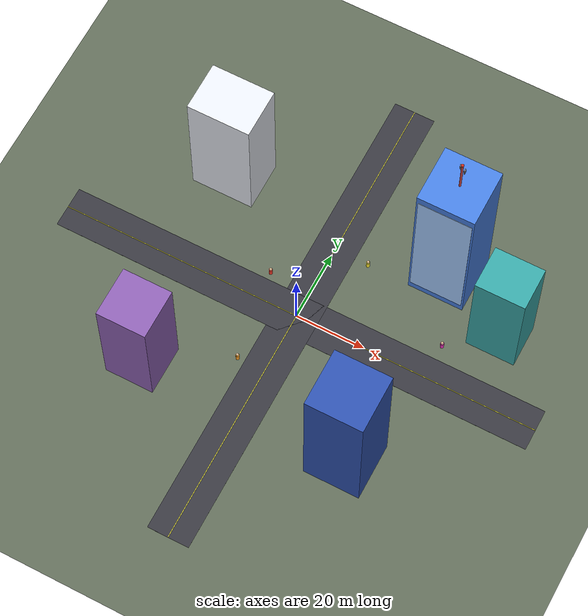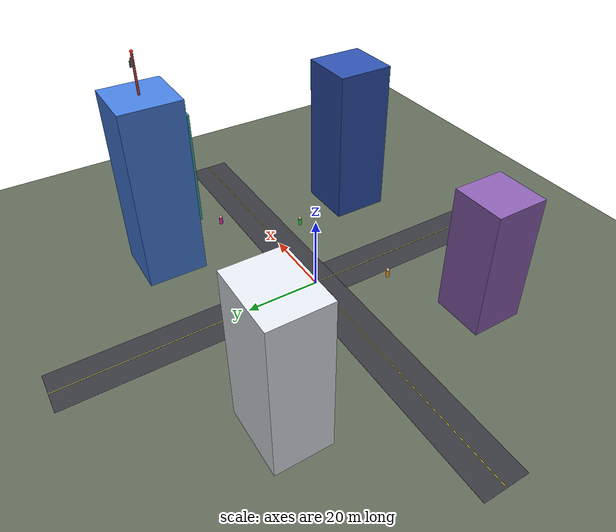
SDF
<sdf version="1.9">
 <world name="urban_mirl_demo">
  <physics name="1ms" type="ignored">
   <max_step_size>0.001</max_step_size>
   <real_time_factor>1.0</real_time_factor>
  </physics>
  <plugin filename="gz-sim-physics-system" name="gz::sim::systems::Physics"/>
  <plugin filename="gz-sim-scene-broadcaster-system" name="gz::sim::systems::SceneBroadcaster"/>
  <plugin filename="gz-sim-user-commands-system" name="gz::sim::systems::UserCommands"/>
  <plugin filename="gz-sim-sensors-system" name="gz::sim::systems::Sensors">
   <render_engine>ogre2</render_engine>
  </plugin>
  <scene><ambient>0.8 0.8 0.85 1</ambient><background>0.5 0.7 0.95 1</background><shadows>true</shadows></scene>
  <light type="directional" name="sun">
   <pose>30 30 80 0 0 0</pose>
   <diffuse>1.0 0.98 0.95 1</diffuse>
   <specular>0.8 0.8 0.75 1</specular>
   <direction>-0.3 -0.3 -0.9</direction>
  </light>
  <light type="directional" name="fill">
   <cast_shadows>false</cast_shadows>
   <pose>-30 -30 50 0 0 0</pose>
   <diffuse>0.5 0.52 0.6 1</diffuse>
   <direction>0.3 0.4 -0.6</direction>
  </light>
  <model name="ground">
   <static>true</static>
   <link name="link">
    <collision name="col">
     <geometry><plane><normal>0 0 1</normal><size>200 200</size></plane></geometry>
    </collision>
    <visual name="vis">
     <geometry><plane><normal>0 0 1</normal><size>200 200</size></plane></geometry>
     <material><ambient>0.35 0.38 0.32 1</ambient><diffuse>0.38 0.42 0.35 1</diffuse></material>
    </visual>
   </link>
  </model>
  <model name="road_ew">
   <static>true</static>
   <link name="link">
    <visual name="surface">
     <pose>0 0 0.01 0 0 0</pose>
     <geometry><box><size>140 12 0.02</size></box></geometry>
     <material><ambient>0.2 0.2 0.22 1</ambient><diffuse>0.22 0.22 0.25 1</diffuse></material>
    </visual>
    <visual name="center_line">
     <pose>0 0 0.02 0 0 0</pose>
     <geometry><box><size>140 0.2 0.01</size></box></geometry>
     <material><ambient>0.95 0.9 0.2 1</ambient><diffuse>0.98 0.92 0.25 1</diffuse></material>
    </visual>
   </link>
  </model>
  <model name="road_ns">
   <static>true</static>
   <link name="link">
    <visual name="surface">
     <pose>0 0 0.01 0 0 0</pose>
     <geometry><box><size>12 140 0.02</size></box></geometry>
     <material><ambient>0.2 0.2 0.22 1</ambient><diffuse>0.22 0.22 0.25 1</diffuse></material>
    </visual>
    <visual name="center_line">
     <pose>0 0 0.02 0 0 0</pose>
     <geometry><box><size>0.2 140 0.01</size></box></geometry>
     <material><ambient>0.95 0.9 0.2 1</ambient><diffuse>0.98 0.92 0.25 1</diffuse></material>
    </visual>
   </link>
  </model>
  <model name="tower_ne1">
   <static>true</static>
   <link name="link">
    <visual name="main">
     <pose>30 30 25 0 0 0</pose>
     <geometry><box><size>16 16 50</size></box></geometry>
     <material>
      <ambient>0.22 0.42 0.78 1</ambient>
      <diffuse>0.28 0.5 0.88 1</diffuse>
      <specular>0.6 0.6 0.7 1</specular>
     </material>
    </visual>
    <visual name="windows">
     <pose>30 22 25 0 0 0</pose>
     <geometry><box><size>15 0.2 45</size></box></geometry>
     <material>
      <ambient>0.6 0.75 0.95 1</ambient>
      <diffuse>0.65 0.8 1.0 1</diffuse>
      <specular>0.8 0.8 0.9 1</specular>
     </material>
    </visual>
   </link>
  </model>
  <model name="tower_ne2">
   <static>true</static>
   <link name="link">
    <visual name="main">
     <pose>50 20 17.5 0 0 0</pose>
     <geometry><box><size>14 12 35</size></box></geometry>
     <material>
      <ambient>0.18 0.58 0.58 1</ambient>
      <diffuse>0.22 0.65 0.65 1</diffuse>
      <specular>0.5 0.6 0.6 1</specular>
     </material>
    </visual>
   </link>
  </model>
  <model name="tower_nw1">
   <static>true</static>
   <link name="link">
    <visual name="main">
     <pose>-35 30 20 0 0 0</pose>
     <geometry><box><size>18 14 40</size></box></geometry>
     <material>
      <ambient>0.85 0.87 0.9 1</ambient>
      <diffuse>0.9 0.92 0.95 1</diffuse>
      <specular>0.5 0.5 0.5 1</specular>
     </material>
    </visual>
   </link>
  </model>
  <model name="tower_se1">
   <static>true</static>
   <link name="link">
    <visual name="main">
     <pose>30 -30 22.5 0 0 0</pose>
     <geometry><box><size>16 16 45</size></box></geometry>
     <material>
      <ambient>0.15 0.28 0.58 1</ambient>
      <diffuse>0.18 0.32 0.68 1</diffuse>
      <specular>0.6 0.6 0.7 1</specular>
     </material>
    </visual>
   </link>
  </model>
  <model name="tower_sw1">
   <static>true</static>
   <link name="link">
    <visual name="main">
     <pose>-30 -30 17.5 0 0 0</pose>
     <geometry><box><size>14 14 35</size></box></geometry>
     <material>
      <ambient>0.48 0.32 0.62 1</ambient>
      <diffuse>0.55 0.38 0.70 1</diffuse>
      <specular>0.5 0.4 0.6 1</specular>
     </material>
    </visual>
   </link>
  </model>
  <model name="base_station">
   <static>true</static>
   <link name="link">
    <visual name="pole">
     <pose>30 30 55 0 0 0</pose>
     <geometry><cylinder><radius>0.3</radius><length>10</length></cylinder></geometry>
     <material><ambient>0.65 0.2 0.2 1</ambient><diffuse>0.75 0.25 0.25 1</diffuse></material>
    </visual>
    <visual name="ant1">
     <pose>30.8 30 58 0 0 0</pose>
     <geometry><box><size>0.3 0.8 1.5</size></box></geometry>
     <material><ambient>0.42 0.42 0.45 1</ambient><diffuse>0.48 0.48 0.52 1</diffuse></material>
    </visual>
    <visual name="ant2">
     <pose>29.3 30.7 58 0 0 0.52</pose>
     <geometry><box><size>0.3 0.8 1.5</size></box></geometry>
     <material><ambient>0.42 0.42 0.45 1</ambient><diffuse>0.48 0.48 0.52 1</diffuse></material>
    </visual>
    <visual name="beacon">
     <pose>30 30 60.5 0 0 0</pose>
     <geometry><sphere><radius>0.4</radius></sphere></geometry>
     <material>
      <ambient>0.98 0.18 0.12 1</ambient>
      <diffuse>1.0 0.22 0.15 1</diffuse>
      <specular>0.5 0.2 0.2 1</specular>
     </material>
    </visual>
   </link>
  </model>
  <model name="user1">
   <static>true</static>
   <link name="link">
    <visual name="body">
     <pose>-12 8 1.0 0 0 0</pose>
     <geometry><cylinder><radius>0.5</radius><length>2.0</length></cylinder></geometry>
     <material><ambient>0.92 0.18 0.12 1</ambient><diffuse>0.96 0.22 0.15 1</diffuse></material>
    </visual>
    <visual name="head">
     <pose>-12 8 2.3 0 0 0</pose>
     <geometry><sphere><radius>0.4</radius></sphere></geometry>
     <material><ambient>0.88 0.72 0.58 1</ambient><diffuse>0.92 0.78 0.62 1</diffuse></material>
    </visual>
   </link>
  </model>
  <model name="user2">
   <static>true</static>
   <link name="link">
    <visual name="body">
     <pose>25 -10 1.0 0 0 0</pose>
     <geometry><cylinder><radius>0.5</radius><length>2.0</length></cylinder></geometry>
     <material><ambient>0.12 0.82 0.22 1</ambient><diffuse>0.15 0.88 0.28 1</diffuse></material>
    </visual>
    <visual name="head">
     <pose>25 -10 2.3 0 0 0</pose>
     <geometry><sphere><radius>0.4</radius></sphere></geometry>
     <material><ambient>0.88 0.72 0.58 1</ambient><diffuse>0.92 0.78 0.62 1</diffuse></material>
    </visual>
   </link>
  </model>
  <model name="user3">
   <static>true</static>
   <link name="link">
    <visual name="body">
     <pose>-8 -18 1.0 0 0 0</pose>
     <geometry><cylinder><radius>0.5</radius><length>2.0</length></cylinder></geometry>
     <material><ambient>0.96 0.58 0.08 1</ambient><diffuse>1.0 0.62 0.12 1</diffuse></material>
    </visual>
    <visual name="head">
     <pose>-8 -18 2.3 0 0 0</pose>
     <geometry><sphere><radius>0.4</radius></sphere></geometry>
     <material><ambient>0.88 0.72 0.58 1</ambient><diffuse>0.92 0.78 0.62 1</diffuse></material>
    </visual>
   </link>
  </model>
  <model name="user4">
   <static>true</static>
   <link name="link">
    <visual name="body">
     <pose>10 22 1.0 0 0 0</pose>
     <geometry><cylinder><radius>0.5</radius><length>2.0</length></cylinder></geometry>
     <material><ambient>0.96 0.88 0.12 1</ambient><diffuse>1.0 0.92 0.18 1</diffuse></material>
    </visual>
    <visual name="head">
     <pose>10 22 2.3 0 0 0</pose>
     <geometry><sphere><radius>0.4</radius></sphere></geometry>
     <material><ambient>0.88 0.72 0.58 1</ambient><diffuse>0.92 0.78 0.62 1</diffuse></material>
    </visual>
   </link>
  </model>
  <model name="user5">
   <static>true</static>
   <link name="link">
    <visual name="body">
     <pose>38 10 1.0 0 0 0</pose>
     <geometry><cylinder><radius>0.5</radius><length>2.0</length></cylinder></geometry>
     <material><ambient>0.88 0.12 0.68 1</ambient><diffuse>0.92 0.18 0.72 1</diffuse></material>
    </visual>
    <visual name="head">
     <pose>38 10 2.3 0 0 0</pose>
     <geometry><sphere><radius>0.4</radius></sphere></geometry>
     <material><ambient>0.88 0.72 0.58 1</ambient><diffuse>0.92 0.78 0.62 1</diffuse></material>
    </visual>
   </link>
  </model>
  <model name="scene_camera">
   <static>true</static>
   <pose>-70 -70 65 0 0.6 0.78</pose>
   <link name="link">
    <sensor name="camera" type="camera">
     <camera>
      <horizontal_fov>1.2</horizontal_fov>
      <image><width>1920</width><height>1080</height><format>R8G8B8</format></image>
      <clip><near>0.5</near><far>500</far></clip>
     </camera>
     <always_on>1</always_on>
     <update_rate>30</update_rate>
     <visualize>false</visualize>
     <topic>/scene_camera</topic>
    </sensor>
   </link>
  </model>
 </world>
</sdf>
